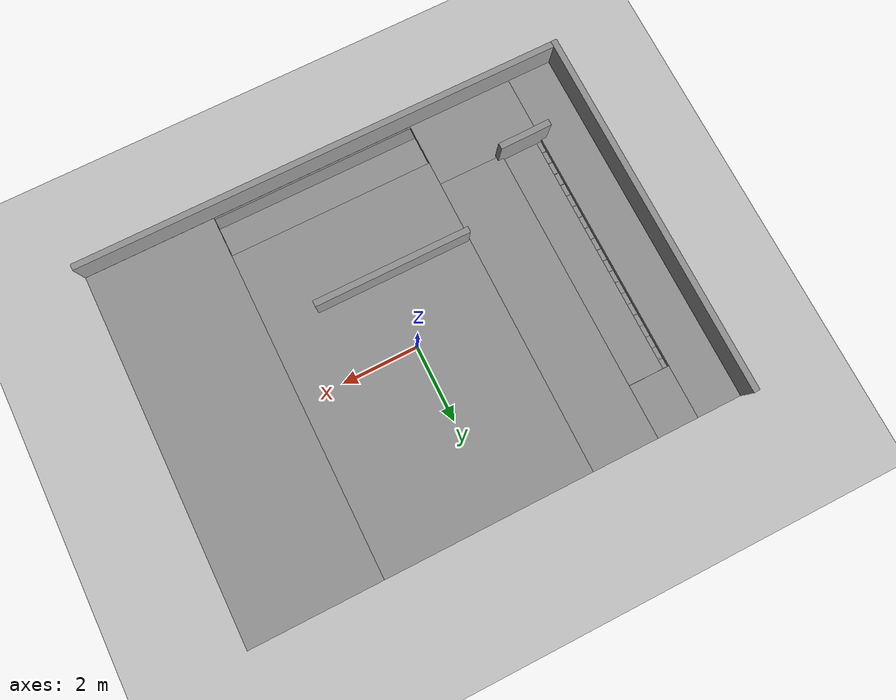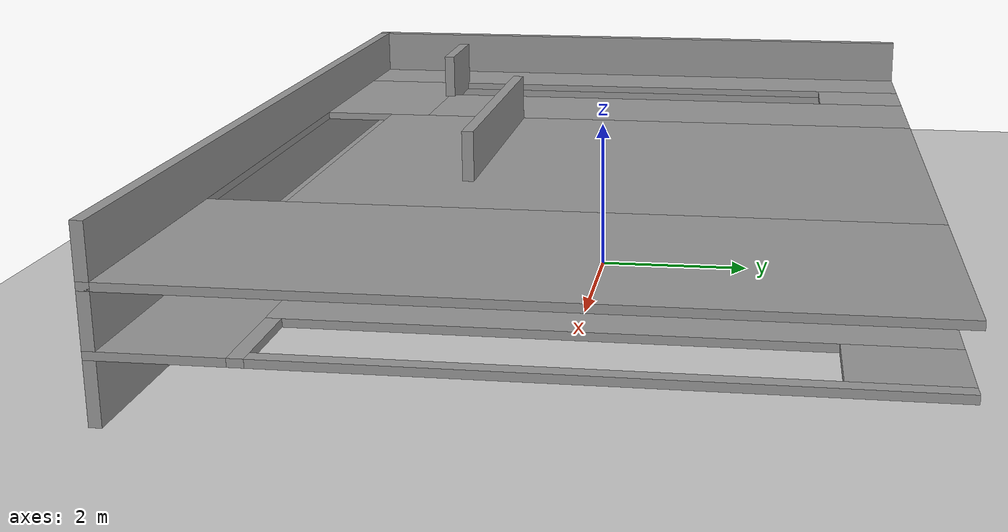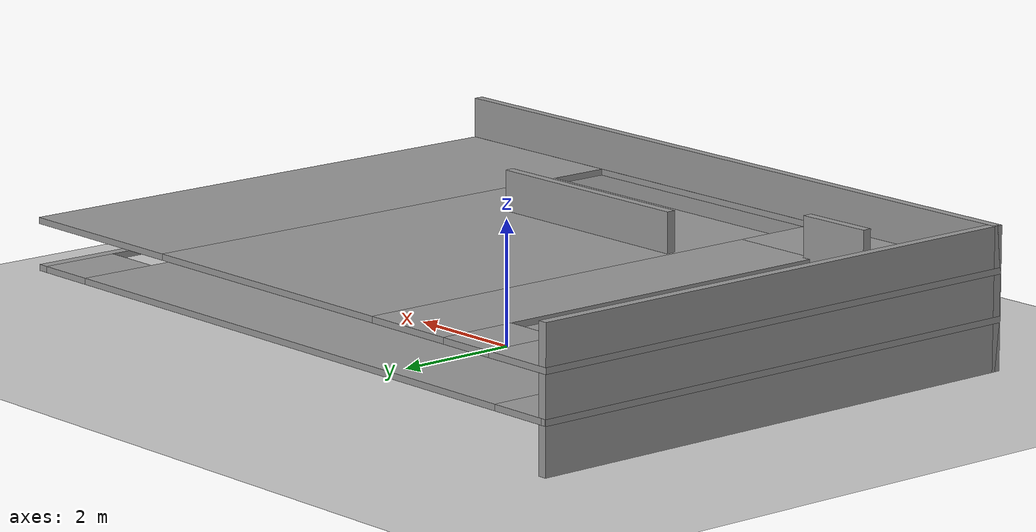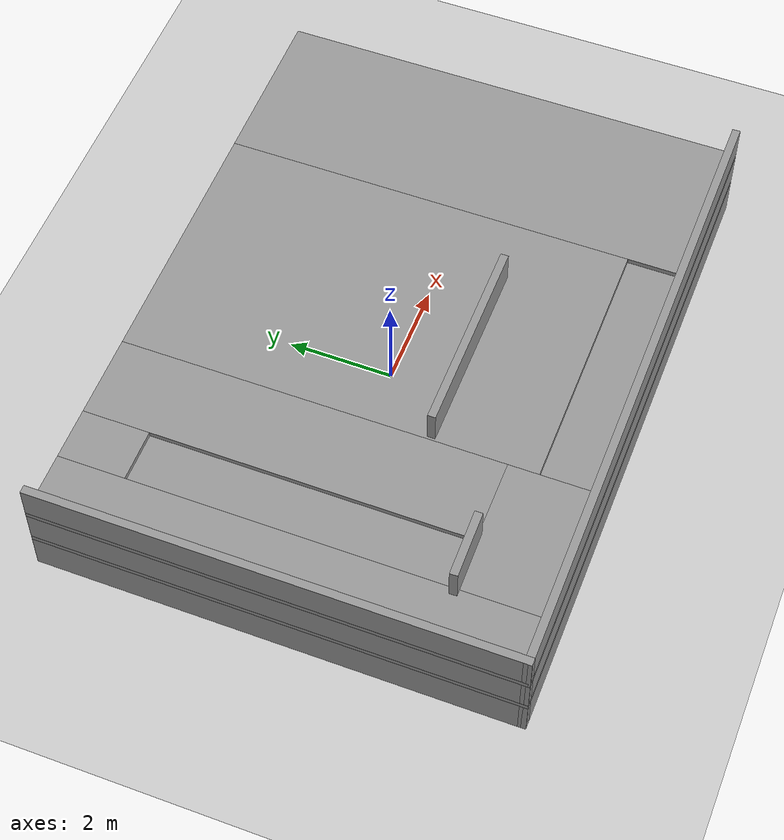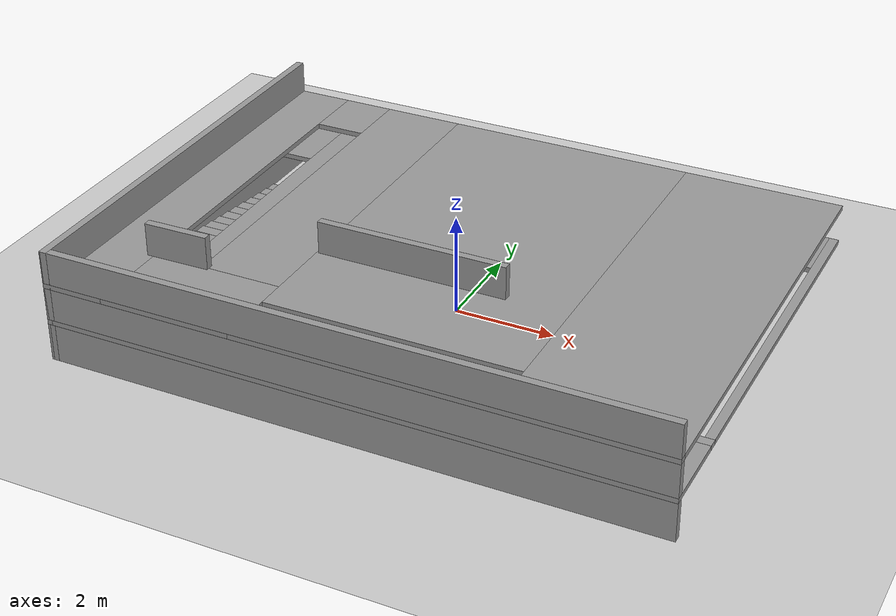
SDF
<sdf version="1.7">
 <world name="default">
  <model name="ground_plane">
   <static>1</static>
   <link name="link">
    <collision name="collision">
     <geometry><plane><normal>0 0 1</normal><size>100 100</size></plane></geometry>
     <surface>
      <contact><collide_bitmask>65535</collide_bitmask></contact>
      <friction><ode><mu>100</mu><mu2>50</mu2></ode></friction>
     </surface>
    </collision>
    <visual name="visual">
     <cast_shadows>0</cast_shadows>
     <geometry><plane><normal>0 0 1</normal><size>100 100</size></plane></geometry>
     <material>
      <script><uri>file://media/materials/scripts/gazebo.material</uri><name>Gazebo/Grey</name></script>
     </material>
    </visual>
   </link>
  </model>
  <model name="building2">
   <pose>0.104983 -0.148677 0 0 -0 0</pose>
   <link name="Floor_0">
    <pose>-7.7e-05 -0.025995 0.75 0 -0 0</pose>
    <visual name="Floor_0_Visual_0">
     <pose>-5.9416 0 0.05 0 -0 0</pose>
     <geometry><box><size>0.099817 9.00002 0.1</size></box></geometry>
     <material>
      <script><uri>file://media/materials/scripts/gazebo.material</uri><name>Gazebo/Grey</name></script>
      <ambient>1 1 1 1</ambient>
     </material>
     <meta><layer>1</layer></meta>
    </visual>
    <collision name="Floor_0_Collision_0">
     <geometry><box><size>0.099817 9.00002 0.1</size></box></geometry>
     <pose>-5.9416 0 0.05 0 -0 0</pose>
    </collision>
    <visual name="Floor_0_Visual_1">
     <pose>0.049909 -3.73004 0.05 0 -0 0</pose>
     <geometry><box><size>11.8832 1.53994 0.1</size></box></geometry>
     <material>
      <script><uri>file://media/materials/scripts/gazebo.material</uri><name>Gazebo/Grey</name></script>
      <ambient>1 1 1 1</ambient>
     </material>
     <meta><layer>1</layer></meta>
    </visual>
    <collision name="Floor_0_Collision_1">
     <geometry><box><size>11.8832 1.53994 0.1</size></box></geometry>
     <pose>0.049909 -3.73004 0.05 0 -0 0</pose>
    </collision>
    <visual name="Floor_0_Visual_2">
     <pose>-0.039381 0.769968 0.05 0 -0 0</pose>
     <geometry><box><size>9.70461 7.46008 0.1</size></box></geometry>
     <material>
      <script><uri>file://media/materials/scripts/gazebo.material</uri><name>Gazebo/Grey</name></script>
      <ambient>1 1 1 1</ambient>
     </material>
     <meta><layer>1</layer></meta>
    </visual>
    <collision name="Floor_0_Collision_2">
     <geometry><box><size>9.70461 7.46008 0.1</size></box></geometry>
     <pose>-0.039381 0.769968 0.05 0 -0 0</pose>
    </collision>
    <visual name="Floor_0_Visual_3">
     <pose>5.40221 -2.86649 0.05 0 -0 0</pose>
     <geometry><box><size>1.17858 0.187166 0.1</size></box></geometry>
     <material>
      <script><uri>file://media/materials/scripts/gazebo.material</uri><name>Gazebo/Grey</name></script>
      <ambient>1 1 1 1</ambient>
     </material>
     <meta><layer>1</layer></meta>
    </visual>
    <collision name="Floor_0_Collision_3">
     <geometry><box><size>1.17858 0.187166 0.1</size></box></geometry>
     <pose>5.40221 -2.86649 0.05 0 -0 0</pose>
    </collision>
    <visual name="Floor_0_Visual_4">
     <pose>5.90221 0.863551 0.05 0 -0 0</pose>
     <geometry><box><size>0.178579 7.27292 0.1</size></box></geometry>
     <material>
      <script><uri>file://media/materials/scripts/gazebo.material</uri><name>Gazebo/Grey</name></script>
      <ambient>1 1 1 1</ambient>
     </material>
     <meta><layer>1</layer></meta>
    </visual>
    <collision name="Floor_0_Collision_4">
     <geometry><box><size>0.178579 7.27292 0.1</size></box></geometry>
     <pose>5.90221 0.863551 0.05 0 -0 0</pose>
    </collision>
    <visual name="Floor_0_Visual_5">
     <pose>-5.39169 3.76997 0.05 0 -0 0</pose>
     <geometry><box><size>1 1.46008 0.1</size></box></geometry>
     <material>
      <script><uri>file://media/materials/scripts/gazebo.material</uri><name>Gazebo/Grey</name></script>
      <ambient>1 1 1 1</ambient>
     </material>
     <meta><layer>1</layer></meta>
    </visual>
    <collision name="Floor_0_Collision_5">
     <geometry><box><size>1 1.46008 0.1</size></box></geometry>
     <pose>-5.39169 3.76997 0.05 0 -0 0</pose>
    </collision>
    <visual name="Floor_0_Visual_6">
     <pose>5.31292 3.86355 0.05 0 -0 0</pose>
     <geometry><box><size>1 1.27292 0.1</size></box></geometry>
     <material>
      <script><uri>file://media/materials/scripts/gazebo.material</uri><name>Gazebo/Grey</name></script>
      <ambient>1 1 1 1</ambient>
     </material>
     <meta><layer>1</layer></meta>
    </visual>
    <collision name="Floor_0_Collision_6">
     <geometry><box><size>1 1.27292 0.1</size></box></geometry>
     <pose>5.31292 3.86355 0.05 0 -0 0</pose>
    </collision>
   </link>
   <link name="Floor_1">
    <pose>-7.7e-05 -0.025995 1.5 0 -0 0</pose>
    <visual name="Floor_1_Visual_0">
     <pose>-5.37778 0 0.05 0 -0 0</pose>
     <geometry><box><size>1.22744 9.00002 0.1</size></box></geometry>
     <material>
      <script><uri>file://media/materials/scripts/gazebo.material</uri><name>Gazebo/Grey</name></script>
      <ambient>1 1 1 1</ambient>
     </material>
     <meta><layer>2</layer></meta>
    </visual>
    <collision name="Floor_1_Collision_0">
     <geometry><box><size>1.22744 9.00002 0.1</size></box></geometry>
     <pose>-5.37778 0 0.05 0 -0 0</pose>
    </collision>
    <visual name="Floor_1_Visual_1">
     <pose>-3.46371 -3.63629 0.05 0 -0 0</pose>
     <geometry><box><size>2.6007 1.72744 0.1</size></box></geometry>
     <material>
      <script><uri>file://media/materials/scripts/gazebo.material</uri><name>Gazebo/Grey</name></script>
      <ambient>1 1 1 1</ambient>
     </material>
     <meta><layer>2</layer></meta>
    </visual>
    <collision name="Floor_1_Collision_1">
     <geometry><box><size>2.6007 1.72744 0.1</size></box></geometry>
     <pose>-3.46371 -3.63629 0.05 0 -0 0</pose>
    </collision>
    <visual name="Floor_1_Visual_2">
     <pose>1.91407 -4.42405 0.05 0 -0 0</pose>
     <geometry><box><size>8.15487 0.151917 0.1</size></box></geometry>
     <material>
      <script><uri>file://media/materials/scripts/gazebo.material</uri><name>Gazebo/Grey</name></script>
      <ambient>1 1 1 1</ambient>
     </material>
     <meta><layer>2</layer></meta>
    </visual>
    <collision name="Floor_1_Collision_2">
     <geometry><box><size>8.15487 0.151917 0.1</size></box></geometry>
     <pose>1.91407 -4.42405 0.05 0 -0 0</pose>
    </collision>
    <visual name="Floor_1_Visual_3">
     <pose>4.41407 0.075959 0.05 0 -0 0</pose>
     <geometry><box><size>3.15487 8.8481 0.1</size></box></geometry>
     <material>
      <script><uri>file://media/materials/scripts/gazebo.material</uri><name>Gazebo/Grey</name></script>
      <ambient>1 1 1 1</ambient>
     </material>
     <meta><layer>2</layer></meta>
    </visual>
    <collision name="Floor_1_Collision_3">
     <geometry><box><size>3.15487 8.8481 0.1</size></box></geometry>
     <pose>4.41407 0.075959 0.05 0 -0 0</pose>
    </collision>
    <visual name="Floor_1_Visual_4">
     <pose>0.336637 0.575959 0.05 0 -0 0</pose>
     <geometry><box><size>5 7.8481 0.1</size></box></geometry>
     <material>
      <script><uri>file://media/materials/scripts/gazebo.material</uri><name>Gazebo/Grey</name></script>
      <ambient>1 1 1 1</ambient>
     </material>
     <meta><layer>2</layer></meta>
    </visual>
    <collision name="Floor_1_Collision_4">
     <geometry><box><size>5 7.8481 0.1</size></box></geometry>
     <pose>0.336637 0.575959 0.05 0 -0 0</pose>
    </collision>
    <visual name="Floor_1_Visual_5">
     <pose>-2.96371 0.863722 0.05 0 -0 0</pose>
     <geometry><box><size>1.6007 7.27257 0.1</size></box></geometry>
     <material>
      <script><uri>file://media/materials/scripts/gazebo.material</uri><name>Gazebo/Grey</name></script>
      <ambient>1 1 1 1</ambient>
     </material>
     <meta><layer>2</layer></meta>
    </visual>
    <collision name="Floor_1_Collision_5">
     <geometry><box><size>1.6007 7.27257 0.1</size></box></geometry>
     <pose>-2.96371 0.863722 0.05 0 -0 0</pose>
    </collision>
    <visual name="Floor_1_Visual_6">
     <pose>-4.26406 3.86372 0.05 0 -0 0</pose>
     <geometry><box><size>1 1.27257 0.1</size></box></geometry>
     <material>
      <script><uri>file://media/materials/scripts/gazebo.material</uri><name>Gazebo/Grey</name></script>
      <ambient>1 1 1 1</ambient>
     </material>
     <meta><layer>2</layer></meta>
    </visual>
    <collision name="Floor_1_Collision_6">
     <geometry><box><size>1 1.27257 0.1</size></box></geometry>
     <pose>-4.26406 3.86372 0.05 0 -0 0</pose>
    </collision>
   </link>
   <link name="Stairs_1">
    <visual name="Stairs_1_Visual_0">
     <pose>-5.39176 2.86393 0.01875 0 -0 0</pose>
     <geometry><box><size>1 0.3 0.0375</size></box></geometry>
     <material>
      <script><uri>file://media/materials/scripts/gazebo.material</uri><name>Gazebo/Grey</name></script>
      <ambient>1 1 1 1</ambient>
     </material>
     <meta><layer>0</layer></meta>
    </visual>
    <collision name="Stairs_1_Collision_0">
     <geometry><box><size>1 0.3 0.0375</size></box></geometry>
     <pose>-5.39176 2.86393 0.01875 0 -0 0</pose>
    </collision>
    <visual name="Stairs_1_Visual_1">
     <pose>-5.39176 2.56393 0.05625 0 -0 0</pose>
     <geometry><box><size>1 0.3 0.0375</size></box></geometry>
     <material>
      <script><uri>file://media/materials/scripts/gazebo.material</uri><name>Gazebo/Grey</name></script>
      <ambient>1 1 1 1</ambient>
     </material>
     <meta><layer>0</layer></meta>
    </visual>
    <collision name="Stairs_1_Collision_1">
     <geometry><box><size>1 0.3 0.0375</size></box></geometry>
     <pose>-5.39176 2.56393 0.05625 0 -0 0</pose>
    </collision>
    <visual name="Stairs_1_Visual_2">
     <pose>-5.39176 2.26393 0.09375 0 -0 0</pose>
     <geometry><box><size>1 0.3 0.0375</size></box></geometry>
     <material>
      <script><uri>file://media/materials/scripts/gazebo.material</uri><name>Gazebo/Grey</name></script>
      <ambient>1 1 1 1</ambient>
     </material>
     <meta><layer>0</layer></meta>
    </visual>
    <collision name="Stairs_1_Collision_2">
     <geometry><box><size>1 0.3 0.0375</size></box></geometry>
     <pose>-5.39176 2.26393 0.09375 0 -0 0</pose>
    </collision>
    <visual name="Stairs_1_Visual_3">
     <pose>-5.39176 1.96393 0.13125 0 -0 0</pose>
     <geometry><box><size>1 0.3 0.0375</size></box></geometry>
     <material>
      <script><uri>file://media/materials/scripts/gazebo.material</uri><name>Gazebo/Grey</name></script>
      <ambient>1 1 1 1</ambient>
     </material>
     <meta><layer>0</layer></meta>
    </visual>
    <collision name="Stairs_1_Collision_3">
     <geometry><box><size>1 0.3 0.0375</size></box></geometry>
     <pose>-5.39176 1.96393 0.13125 0 -0 0</pose>
    </collision>
    <visual name="Stairs_1_Visual_4">
     <pose>-5.39176 1.66393 0.16875 0 -0 0</pose>
     <geometry><box><size>1 0.3 0.0375</size></box></geometry>
     <material>
      <script><uri>file://media/materials/scripts/gazebo.material</uri><name>Gazebo/Grey</name></script>
      <ambient>1 1 1 1</ambient>
     </material>
     <meta><layer>0</layer></meta>
    </visual>
    <collision name="Stairs_1_Collision_4">
     <geometry><box><size>1 0.3 0.0375</size></box></geometry>
     <pose>-5.39176 1.66393 0.16875 0 -0 0</pose>
    </collision>
    <visual name="Stairs_1_Visual_5">
     <pose>-5.39176 1.36393 0.20625 0 -0 0</pose>
     <geometry><box><size>1 0.3 0.0375</size></box></geometry>
     <material>
      <script><uri>file://media/materials/scripts/gazebo.material</uri><name>Gazebo/Grey</name></script>
      <ambient>1 1 1 1</ambient>
     </material>
     <meta><layer>0</layer></meta>
    </visual>
    <collision name="Stairs_1_Collision_5">
     <geometry><box><size>1 0.3 0.0375</size></box></geometry>
     <pose>-5.39176 1.36393 0.20625 0 -0 0</pose>
    </collision>
    <visual name="Stairs_1_Visual_6">
     <pose>-5.39176 1.06393 0.24375 0 -0 0</pose>
     <geometry><box><size>1 0.3 0.0375</size></box></geometry>
     <material>
      <script><uri>file://media/materials/scripts/gazebo.material</uri><name>Gazebo/Grey</name></script>
      <ambient>1 1 1 1</ambient>
     </material>
     <meta><layer>0</layer></meta>
    </visual>
    <collision name="Stairs_1_Collision_6">
     <geometry><box><size>1 0.3 0.0375</size></box></geometry>
     <pose>-5.39176 1.06393 0.24375 0 -0 0</pose>
    </collision>
    <visual name="Stairs_1_Visual_7">
     <pose>-5.39176 0.763932 0.28125 0 -0 0</pose>
     <geometry><box><size>1 0.3 0.0375</size></box></geometry>
     <material>
      <script><uri>file://media/materials/scripts/gazebo.material</uri><name>Gazebo/Grey</name></script>
      <ambient>1 1 1 1</ambient>
     </material>
     <meta><layer>0</layer></meta>
    </visual>
    <collision name="Stairs_1_Collision_7">
     <geometry><box><size>1 0.3 0.0375</size></box></geometry>
     <pose>-5.39176 0.763932 0.28125 0 -0 0</pose>
    </collision>
    <visual name="Stairs_1_Visual_8">
     <pose>-5.39176 0.463932 0.31875 0 -0 0</pose>
     <geometry><box><size>1 0.3 0.0375</size></box></geometry>
     <material>
      <script><uri>file://media/materials/scripts/gazebo.material</uri><name>Gazebo/Grey</name></script>
      <ambient>1 1 1 1</ambient>
     </material>
     <meta><layer>0</layer></meta>
    </visual>
    <collision name="Stairs_1_Collision_8">
     <geometry><box><size>1 0.3 0.0375</size></box></geometry>
     <pose>-5.39176 0.463932 0.31875 0 -0 0</pose>
    </collision>
    <visual name="Stairs_1_Visual_9">
     <pose>-5.39176 0.163932 0.35625 0 -0 0</pose>
     <geometry><box><size>1 0.3 0.0375</size></box></geometry>
     <material>
      <script><uri>file://media/materials/scripts/gazebo.material</uri><name>Gazebo/Grey</name></script>
      <ambient>1 1 1 1</ambient>
     </material>
     <meta><layer>0</layer></meta>
    </visual>
    <collision name="Stairs_1_Collision_9">
     <geometry><box><size>1 0.3 0.0375</size></box></geometry>
     <pose>-5.39176 0.163932 0.35625 0 -0 0</pose>
    </collision>
    <visual name="Stairs_1_Visual_10">
     <pose>-5.39176 -0.136068 0.39375 0 -0 0</pose>
     <geometry><box><size>1 0.3 0.0375</size></box></geometry>
     <material>
      <script><uri>file://media/materials/scripts/gazebo.material</uri><name>Gazebo/Grey</name></script>
      <ambient>1 1 1 1</ambient>
     </material>
     <meta><layer>0</layer></meta>
    </visual>
    <collision name="Stairs_1_Collision_10">
     <geometry><box><size>1 0.3 0.0375</size></box></geometry>
     <pose>-5.39176 -0.136068 0.39375 0 -0 0</pose>
    </collision>
    <visual name="Stairs_1_Visual_11">
     <pose>-5.39176 -0.436068 0.43125 0 -0 0</pose>
     <geometry><box><size>1 0.3 0.0375</size></box></geometry>
     <material>
      <script><uri>file://media/materials/scripts/gazebo.material</uri><name>Gazebo/Grey</name></script>
      <ambient>1 1 1 1</ambient>
     </material>
     <meta><layer>0</layer></meta>
    </visual>
    <collision name="Stairs_1_Collision_11">
     <geometry><box><size>1 0.3 0.0375</size></box></geometry>
     <pose>-5.39176 -0.436068 0.43125 0 -0 0</pose>
    </collision>
    <visual name="Stairs_1_Visual_12">
     <pose>-5.39176 -0.736068 0.46875 0 -0 0</pose>
     <geometry><box><size>1 0.3 0.0375</size></box></geometry>
     <material>
      <script><uri>file://media/materials/scripts/gazebo.material</uri><name>Gazebo/Grey</name></script>
      <ambient>1 1 1 1</ambient>
     </material>
     <meta><layer>0</layer></meta>
    </visual>
    <collision name="Stairs_1_Collision_12">
     <geometry><box><size>1 0.3 0.0375</size></box></geometry>
     <pose>-5.39176 -0.736068 0.46875 0 -0 0</pose>
    </collision>
    <visual name="Stairs_1_Visual_13">
     <pose>-5.39176 -1.03607 0.50625 0 -0 0</pose>
     <geometry><box><size>1 0.3 0.0375</size></box></geometry>
     <material>
      <script><uri>file://media/materials/scripts/gazebo.material</uri><name>Gazebo/Grey</name></script>
      <ambient>1 1 1 1</ambient>
     </material>
     <meta><layer>0</layer></meta>
    </visual>
    <collision name="Stairs_1_Collision_13">
     <geometry><box><size>1 0.3 0.0375</size></box></geometry>
     <pose>-5.39176 -1.03607 0.50625 0 -0 0</pose>
    </collision>
    <visual name="Stairs_1_Visual_14">
     <pose>-5.39176 -1.33607 0.54375 0 -0 0</pose>
     <geometry><box><size>1 0.3 0.0375</size></box></geometry>
     <material>
      <script><uri>file://media/materials/scripts/gazebo.material</uri><name>Gazebo/Grey</name></script>
      <ambient>1 1 1 1</ambient>
     </material>
     <meta><layer>0</layer></meta>
    </visual>
    <collision name="Stairs_1_Collision_14">
     <geometry><box><size>1 0.3 0.0375</size></box></geometry>
     <pose>-5.39176 -1.33607 0.54375 0 -0 0</pose>
    </collision>
    <visual name="Stairs_1_Visual_15">
     <pose>-5.39176 -1.63607 0.58125 0 -0 0</pose>
     <geometry><box><size>1 0.3 0.0375</size></box></geometry>
     <material>
      <script><uri>file://media/materials/scripts/gazebo.material</uri><name>Gazebo/Grey</name></script>
      <ambient>1 1 1 1</ambient>
     </material>
     <meta><layer>0</layer></meta>
    </visual>
    <collision name="Stairs_1_Collision_15">
     <geometry><box><size>1 0.3 0.0375</size></box></geometry>
     <pose>-5.39176 -1.63607 0.58125 0 -0 0</pose>
    </collision>
    <visual name="Stairs_1_Visual_16">
     <pose>-5.39176 -1.93607 0.61875 0 -0 0</pose>
     <geometry><box><size>1 0.3 0.0375</size></box></geometry>
     <material>
      <script><uri>file://media/materials/scripts/gazebo.material</uri><name>Gazebo/Grey</name></script>
      <ambient>1 1 1 1</ambient>
     </material>
     <meta><layer>0</layer></meta>
    </visual>
    <collision name="Stairs_1_Collision_16">
     <geometry><box><size>1 0.3 0.0375</size></box></geometry>
     <pose>-5.39176 -1.93607 0.61875 0 -0 0</pose>
    </collision>
    <visual name="Stairs_1_Visual_17">
     <pose>-5.39176 -2.23607 0.65625 0 -0 0</pose>
     <geometry><box><size>1 0.3 0.0375</size></box></geometry>
     <material>
      <script><uri>file://media/materials/scripts/gazebo.material</uri><name>Gazebo/Grey</name></script>
      <ambient>1 1 1 1</ambient>
     </material>
     <meta><layer>0</layer></meta>
    </visual>
    <collision name="Stairs_1_Collision_17">
     <geometry><box><size>1 0.3 0.0375</size></box></geometry>
     <pose>-5.39176 -2.23607 0.65625 0 -0 0</pose>
    </collision>
    <visual name="Stairs_1_Visual_18">
     <pose>-5.39176 -2.53607 0.69375 0 -0 0</pose>
     <geometry><box><size>1 0.3 0.0375</size></box></geometry>
     <material>
      <script><uri>file://media/materials/scripts/gazebo.material</uri><name>Gazebo/Grey</name></script>
      <ambient>1 1 1 1</ambient>
     </material>
     <meta><layer>0</layer></meta>
    </visual>
    <collision name="Stairs_1_Collision_18">
     <geometry><box><size>1 0.3 0.0375</size></box></geometry>
     <pose>-5.39176 -2.53607 0.69375 0 -0 0</pose>
    </collision>
    <visual name="Stairs_1_Visual_19">
     <pose>-5.39176 -2.83607 0.73125 0 -0 0</pose>
     <geometry><box><size>1 0.3 0.0375</size></box></geometry>
     <material>
      <script><uri>file://media/materials/scripts/gazebo.material</uri><name>Gazebo/Grey</name></script>
      <ambient>1 1 1 1</ambient>
     </material>
     <meta><layer>0</layer></meta>
    </visual>
    <collision name="Stairs_1_Collision_19">
     <geometry><box><size>1 0.3 0.0375</size></box></geometry>
     <pose>-5.39176 -2.83607 0.73125 0 -0 0</pose>
    </collision>
   </link>
   <link name="Wall_0">
    <collision name="Wall_0_Collision">
     <geometry><box><size>9 0.15 0.75</size></box></geometry>
     <pose>0 0 0.375 0 -0 0</pose>
    </collision>
    <visual name="Wall_0_Visual">
     <pose>0 0 0.375 0 -0 0</pose>
     <geometry><box><size>9 0.15 0.75</size></box></geometry>
     <material>
      <script><uri>file://media/materials/scripts/gazebo.material</uri><name>Gazebo/Grey</name></script>
      <ambient>1 1 1 1</ambient>
     </material>
     <meta><layer>0</layer></meta>
    </visual>
    <pose>-5.91607 -0.025995 0 0 -0 -1.57091</pose>
   </link>
   <link name="Wall_1">
    <collision name="Wall_1_Collision">
     <geometry><box><size>11.983 0.15 0.75</size></box></geometry>
     <pose>0 0 0.375 0 -0 0</pose>
    </collision>
    <visual name="Wall_1_Visual">
     <pose>0 0 0.375 0 -0 0</pose>
     <geometry><box><size>11.983 0.15 0.75</size></box></geometry>
     <material>
      <script><uri>file://media/materials/scripts/gazebo.material</uri><name>Gazebo/Grey</name></script>
      <ambient>1 1 1 1</ambient>
     </material>
     <meta><layer>0</layer></meta>
    </visual>
    <pose>-7.3e-05 -4.45099 0 0 -0 0</pose>
   </link>
   <link name="Wall_11">
    <collision name="Wall_11_Collision">
     <geometry><box><size>2 0.15 0.75</size></box></geometry>
     <pose>0 0 0.375 0 -0 0</pose>
    </collision>
    <visual name="Wall_11_Visual">
     <pose>0 0 0.375 0 -0 0</pose>
     <geometry><box><size>2 0.15 0.75</size></box></geometry>
     <material>
      <script><uri>file://media/materials/scripts/gazebo.material</uri><name>Gazebo/Grey</name></script>
      <ambient>1 1 1 1</ambient>
     </material>
     <meta><layer>0</layer></meta>
    </visual>
    <pose>-1.88857 -2.79799 0 0 -0 3.14159</pose>
   </link>
   <link name="Wall_16">
    <collision name="Wall_16_Collision">
     <geometry><box><size>9 0.15 0.75</size></box></geometry>
     <pose>0 0 0.375 0 -0 0</pose>
    </collision>
    <visual name="Wall_16_Visual">
     <pose>0 0 0.375 0 -0 0</pose>
     <geometry><box><size>9 0.15 0.75</size></box></geometry>
     <material>
      <script><uri>file://media/materials/scripts/gazebo.material</uri><name>Gazebo/Grey</name></script>
      <ambient>1 1 1 1</ambient>
     </material>
     <meta><layer>1</layer></meta>
    </visual>
    <pose>-5.91607 -0.025995 0.75 0 -0 -1.57091</pose>
   </link>
   <link name="Wall_17">
    <collision name="Wall_17_Collision">
     <geometry><box><size>11.983 0.15 0.75</size></box></geometry>
     <pose>0 0 0.375 0 -0 0</pose>
    </collision>
    <visual name="Wall_17_Visual">
     <pose>0 0 0.375 0 -0 0</pose>
     <geometry><box><size>11.983 0.15 0.75</size></box></geometry>
     <material>
      <script><uri>file://media/materials/scripts/gazebo.material</uri><name>Gazebo/Grey</name></script>
      <ambient>1 1 1 1</ambient>
     </material>
     <meta><layer>1</layer></meta>
    </visual>
    <pose>-7.3e-05 -4.45099 0.75 0 -0 0</pose>
   </link>
   <link name="Wall_43">
    <collision name="Wall_43_Collision">
     <geometry><box><size>2 0.15 0.75</size></box></geometry>
     <pose>0 0 0.375 0 -0 0</pose>
    </collision>
    <visual name="Wall_43_Visual">
     <pose>0 0 0.375 0 -0 0</pose>
     <geometry><box><size>2 0.15 0.75</size></box></geometry>
     <material>
      <script><uri>file://media/materials/scripts/gazebo.material</uri><name>Gazebo/Grey</name></script>
      <ambient>1 1 1 1</ambient>
     </material>
     <meta><layer>1</layer></meta>
    </visual>
    <pose>-2.23557 -0.638995 0.75 0 -0 -1.5708</pose>
   </link>
   <link name="Wall_45">
    <collision name="Wall_45_Collision">
     <geometry><box><size>9 0.15 0.75</size></box></geometry>
     <pose>0 0 0.375 0 -0 0</pose>
    </collision>
    <visual name="Wall_45_Visual">
     <pose>0 0 0.375 0 -0 0</pose>
     <geometry><box><size>9 0.15 0.75</size></box></geometry>
     <material>
      <script><uri>file://media/materials/scripts/gazebo.material</uri><name>Gazebo/Grey</name></script>
      <ambient>1 1 1 1</ambient>
     </material>
     <meta><layer>2</layer></meta>
    </visual>
    <pose>-5.91607 -0.025995 1.5 0 -0 -1.57091</pose>
   </link>
   <link name="Wall_46">
    <collision name="Wall_46_Collision">
     <geometry><box><size>11.983 0.15 0.75</size></box></geometry>
     <pose>0 0 0.375 0 -0 0</pose>
    </collision>
    <visual name="Wall_46_Visual">
     <pose>0 0 0.375 0 -0 0</pose>
     <geometry><box><size>11.983 0.15 0.75</size></box></geometry>
     <material>
      <script><uri>file://media/materials/scripts/gazebo.material</uri><name>Gazebo/Grey</name></script>
      <ambient>1 1 1 1</ambient>
     </material>
     <meta><layer>2</layer></meta>
    </visual>
    <pose>-7.3e-05 -4.45099 1.5 0 -0 0</pose>
   </link>
   <link name="Wall_59">
    <collision name="Wall_59_Collision">
     <geometry><box><size>1.26913 0.15 0.75</size></box></geometry>
     <pose>0 0 0.375 0 -0 0</pose>
    </collision>
    <visual name="Wall_59_Visual">
     <pose>0 0 0.375 0 -0 0</pose>
     <geometry><box><size>1.26913 0.15 0.75</size></box></geometry>
     <material>
      <script><uri>file://media/materials/scripts/gazebo.material</uri><name>Gazebo/Grey</name></script>
      <ambient>1 1 1 1</ambient>
     </material>
     <meta><layer>2</layer></meta>
    </visual>
    <pose>-4.25407 -2.7895 1.5 0 -0 -3.1264</pose>
   </link>
   <link name="Wall_69">
    <collision name="Wall_69_Collision">
     <geometry><box><size>3.75 0.15 0.75</size></box></geometry>
     <pose>0 0 0.375 0 -0 0</pose>
    </collision>
    <visual name="Wall_69_Visual">
     <pose>0 0 0.375 0 -0 0</pose>
     <geometry><box><size>3.75 0.15 0.75</size></box></geometry>
     <material>
      <script><uri>file://media/materials/scripts/gazebo.material</uri><name>Gazebo/Grey</name></script>
      <ambient>1 1 1 1</ambient>
     </material>
     <meta><layer>2</layer></meta>
    </visual>
    <pose>-0.244573 -1.38099 1.5 0 -0 3.14159</pose>
   </link>
   <static>1</static>
  </model>
 </world>
</sdf>
